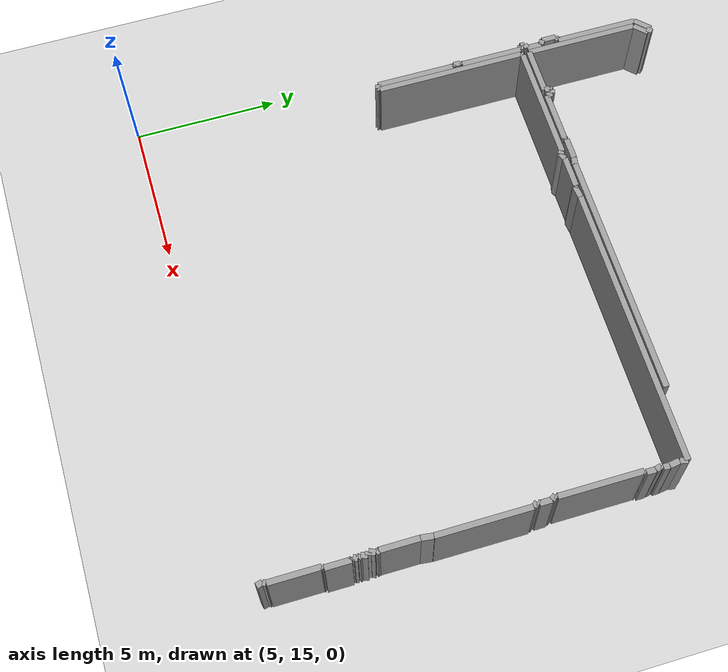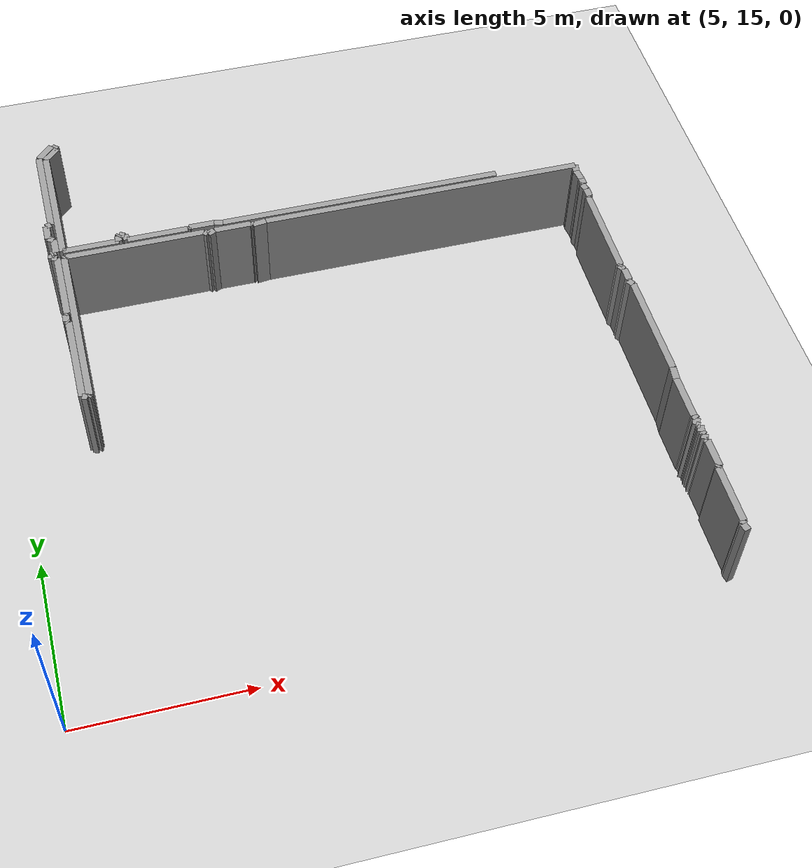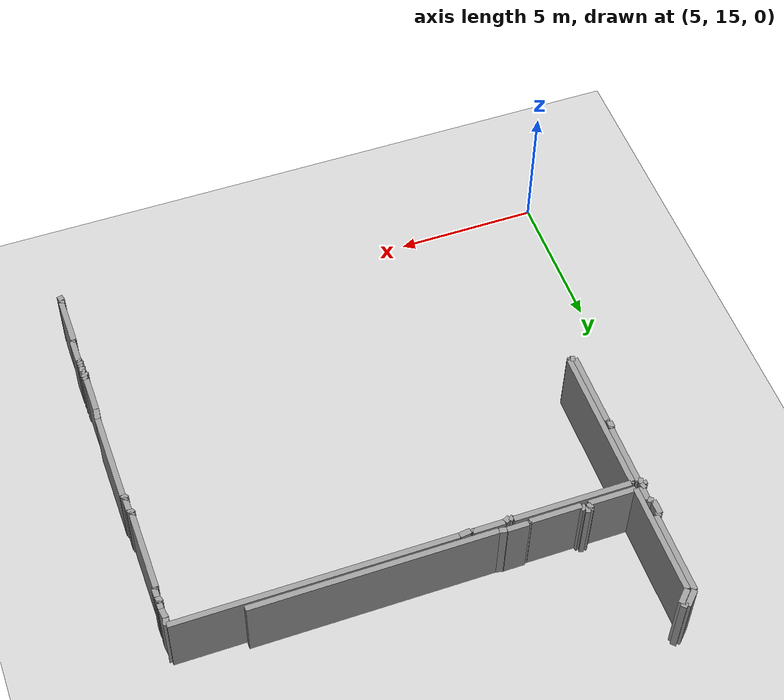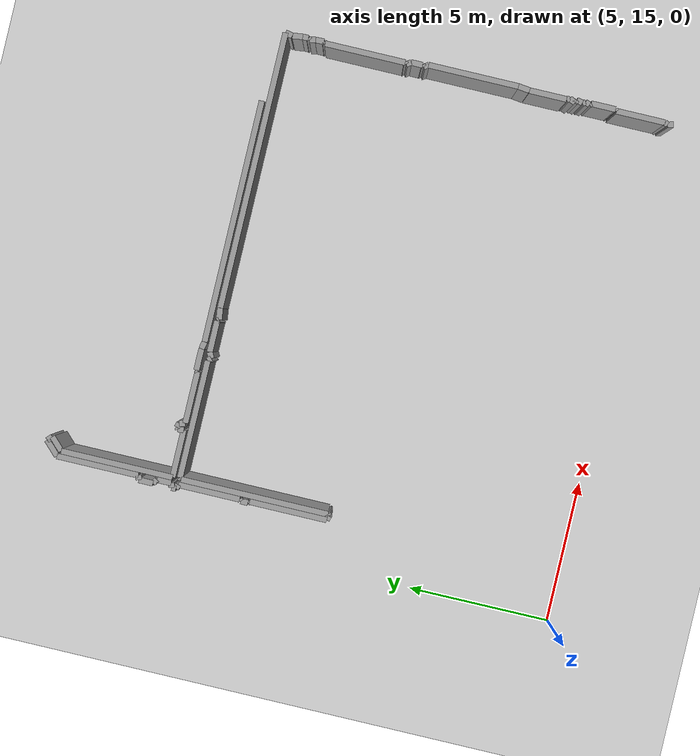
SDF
<sdf version="1.4">
 <world name="1_wall">
  <model name="ground_plane">
   <static>1</static>
   <link name="link">
    <collision name="collision">
     <geometry><plane><normal>0 0 1</normal><size>1000 1000</size></plane></geometry>
     <surface><friction><ode><mu>100</mu><mu2>50</mu2></ode></friction></surface>
    </collision>
    <visual name="visual">
     <cast_shadows>0</cast_shadows>
     <geometry><plane><normal>0 0 1</normal><size>10000 10000</size></plane></geometry>
     <material>
      <script><uri>file://media/materials/scripts/gazebo.material</uri><name>Gazebo/Grey</name></script>
     </material>
    </visual>
    <velocity_decay><linear>0</linear><angular>0</angular></velocity_decay>
   </link>
  </model>
  <model name="Wall_332">
   <static>1</static>
   <link name="Wall_332">
    <collision name="Wall_Collision_332">
     <geometry><box><size>8.450000000000001 0.2 2.5</size></box></geometry>
     <pose>0 0 1.25 0 -0 0</pose>
    </collision>
    <visual name="Wall_Visual_332">
     <pose>0 0 1.25 0 -0 0</pose>
     <geometry><box><size>8.450000000000001 0.2 2.5</size></box></geometry>
     <material>
      <script><uri>file://media/materials/scripts/gazebo.material</uri><name>Gazebo/Grey</name></script>
     </material>
    </visual>
    <velocity_decay><linear>0</linear><angular>0</angular></velocity_decay>
    <pose>16.125 28.900000000000002 0 0 0 3.141592653589793</pose>
   </link>
  </model>
  <model name="Wall_333">
   <static>1</static>
   <link name="Wall_333">
    <collision name="Wall_Collision_333">
     <geometry><box><size>0.25495097567963937 0.2 2.5</size></box></geometry>
     <pose>0 0 1.25 0 -0 0</pose>
    </collision>
    <visual name="Wall_Visual_333">
     <pose>0 0 1.25 0 -0 0</pose>
     <geometry><box><size>0.25495097567963937 0.2 2.5</size></box></geometry>
     <material>
      <script><uri>file://media/materials/scripts/gazebo.material</uri><name>Gazebo/Grey</name></script>
     </material>
    </visual>
    <velocity_decay><linear>0</linear><angular>0</angular></velocity_decay>
    <pose>11.775 28.925000000000004 0 0 0 2.9441970937399096</pose>
   </link>
  </model>
  <model name="Wall_334">
   <static>1</static>
   <link name="Wall_334">
    <collision name="Wall_Collision_334">
     <geometry><box><size>0.75 0.2 2.5</size></box></geometry>
     <pose>0 0 1.25 0 -0 0</pose>
    </collision>
    <visual name="Wall_Visual_334">
     <pose>0 0 1.25 0 -0 0</pose>
     <geometry><box><size>0.75 0.2 2.5</size></box></geometry>
     <material>
      <script><uri>file://media/materials/scripts/gazebo.material</uri><name>Gazebo/Grey</name></script>
     </material>
    </visual>
    <velocity_decay><linear>0</linear><angular>0</angular></velocity_decay>
    <pose>11.275 28.950000000000003 0 0 0 3.141592653589793</pose>
   </link>
  </model>
  <model name="Wall_335">
   <static>1</static>
   <link name="Wall_335">
    <collision name="Wall_Collision_335">
     <geometry><box><size>0.0707106781186545 0.2 2.5</size></box></geometry>
     <pose>0 0 1.25 0 -0 0</pose>
    </collision>
    <visual name="Wall_Visual_335">
     <pose>0 0 1.25 0 -0 0</pose>
     <geometry><box><size>0.0707106781186545 0.2 2.5</size></box></geometry>
     <material>
      <script><uri>file://media/materials/scripts/gazebo.material</uri><name>Gazebo/Grey</name></script>
     </material>
    </visual>
    <velocity_decay><linear>0</linear><angular>0</angular></velocity_decay>
    <pose>10.875 28.925000000000004 0 0 0 -2.356194490192327</pose>
   </link>
  </model>
  <model name="Wall_336">
   <static>1</static>
   <link name="Wall_336">
    <collision name="Wall_Collision_336">
     <geometry><box><size>1.8000000000000007 0.2 2.5</size></box></geometry>
     <pose>0 0 1.25 0 -0 0</pose>
    </collision>
    <visual name="Wall_Visual_336">
     <pose>0 0 1.25 0 -0 0</pose>
     <geometry><box><size>1.8000000000000007 0.2 2.5</size></box></geometry>
     <material>
      <script><uri>file://media/materials/scripts/gazebo.material</uri><name>Gazebo/Grey</name></script>
     </material>
    </visual>
    <velocity_decay><linear>0</linear><angular>0</angular></velocity_decay>
    <pose>9.950000000000001 28.900000000000002 0 0 0 3.141592653589793</pose>
   </link>
  </model>
  <model name="Wall_337">
   <static>1</static>
   <link name="Wall_337">
    <collision name="Wall_Collision_337">
     <geometry><box><size>0.2061552812808825 0.2 2.5</size></box></geometry>
     <pose>0 0 1.25 0 -0 0</pose>
    </collision>
    <visual name="Wall_Visual_337">
     <pose>0 0 1.25 0 -0 0</pose>
     <geometry><box><size>0.2061552812808825 0.2 2.5</size></box></geometry>
     <material>
      <script><uri>file://media/materials/scripts/gazebo.material</uri><name>Gazebo/Grey</name></script>
     </material>
    </visual>
    <velocity_decay><linear>0</linear><angular>0</angular></velocity_decay>
    <pose>9.025 29.0 0 0 0 1.815774989921765</pose>
   </link>
  </model>
  <model name="Wall_338">
   <static>1</static>
   <link name="Wall_338">
    <collision name="Wall_Collision_338">
     <geometry><box><size>0.15811388300841953 0.2 2.5</size></box></geometry>
     <pose>0 0 1.25 0 -0 0</pose>
    </collision>
    <visual name="Wall_Visual_338">
     <pose>0 0 1.25 0 -0 0</pose>
     <geometry><box><size>0.15811388300841953 0.2 2.5</size></box></geometry>
     <material>
      <script><uri>file://media/materials/scripts/gazebo.material</uri><name>Gazebo/Grey</name></script>
     </material>
    </visual>
    <velocity_decay><linear>0</linear><angular>0</angular></velocity_decay>
    <pose>8.925 29.125 0 0 0 2.8198420991931474</pose>
   </link>
  </model>
  <model name="Wall_339">
   <static>1</static>
   <link name="Wall_339">
    <collision name="Wall_Collision_339">
     <geometry><box><size>0.0707106781186545 0.2 2.5</size></box></geometry>
     <pose>0 0 1.25 0 -0 0</pose>
    </collision>
    <visual name="Wall_Visual_339">
     <pose>0 0 1.25 0 -0 0</pose>
     <geometry><box><size>0.0707106781186545 0.2 2.5</size></box></geometry>
     <material>
      <script><uri>file://media/materials/scripts/gazebo.material</uri><name>Gazebo/Grey</name></script>
     </material>
    </visual>
    <velocity_decay><linear>0</linear><angular>0</angular></velocity_decay>
    <pose>8.825 29.125 0 0 0 -2.356194490192327</pose>
   </link>
  </model>
  <model name="Wall_340">
   <static>1</static>
   <link name="Wall_340">
    <collision name="Wall_Collision_340">
     <geometry><box><size>0.1999999999999993 0.2 2.5</size></box></geometry>
     <pose>0 0 1.25 0 -0 0</pose>
    </collision>
    <visual name="Wall_Visual_340">
     <pose>0 0 1.25 0 -0 0</pose>
     <geometry><box><size>0.1999999999999993 0.2 2.5</size></box></geometry>
     <material>
      <script><uri>file://media/materials/scripts/gazebo.material</uri><name>Gazebo/Grey</name></script>
     </material>
    </visual>
    <velocity_decay><linear>0</linear><angular>0</angular></velocity_decay>
    <pose>8.8 29.0 0 0 0 -1.5707963267948966</pose>
   </link>
  </model>
  <model name="Wall_341">
   <static>1</static>
   <link name="Wall_341">
    <collision name="Wall_Collision_341">
     <geometry><box><size>1.6500000000000004 0.2 2.5</size></box></geometry>
     <pose>0 0 1.25 0 -0 0</pose>
    </collision>
    <visual name="Wall_Visual_341">
     <pose>0 0 1.25 0 -0 0</pose>
     <geometry><box><size>1.6500000000000004 0.2 2.5</size></box></geometry>
     <material>
      <script><uri>file://media/materials/scripts/gazebo.material</uri><name>Gazebo/Grey</name></script>
     </material>
    </visual>
    <velocity_decay><linear>0</linear><angular>0</angular></velocity_decay>
    <pose>7.9750000000000005 28.900000000000002 0 0 0 3.141592653589793</pose>
   </link>
  </model>
  <model name="Wall_342">
   <static>1</static>
   <link name="Wall_342">
    <collision name="Wall_Collision_342">
     <geometry><box><size>3.900000000000002 0.2 2.5</size></box></geometry>
     <pose>0 0 1.25 0 -0 0</pose>
    </collision>
    <visual name="Wall_Visual_342">
     <pose>0 0 1.25 0 -0 0</pose>
     <geometry><box><size>3.900000000000002 0.2 2.5</size></box></geometry>
     <material>
      <script><uri>file://media/materials/scripts/gazebo.material</uri><name>Gazebo/Grey</name></script>
     </material>
    </visual>
    <velocity_decay><linear>0</linear><angular>0</angular></velocity_decay>
    <pose>7.15 30.85 0 0 0 1.5707963267948966</pose>
   </link>
  </model>
  <model name="Wall_343">
   <static>1</static>
   <link name="Wall_343">
    <collision name="Wall_Collision_343">
     <geometry><box><size>0.5656854249492372 0.2 2.5</size></box></geometry>
     <pose>0 0 1.25 0 -0 0</pose>
    </collision>
    <visual name="Wall_Visual_343">
     <pose>0 0 1.25 0 -0 0</pose>
     <geometry><box><size>0.5656854249492372 0.2 2.5</size></box></geometry>
     <material>
      <script><uri>file://media/materials/scripts/gazebo.material</uri><name>Gazebo/Grey</name></script>
     </material>
    </visual>
    <velocity_decay><linear>0</linear><angular>0</angular></velocity_decay>
    <pose>7.3500000000000005 33.0 0 0 0 0.7853981633974461</pose>
   </link>
  </model>
  <model name="Wall_344">
   <static>1</static>
   <link name="Wall_344">
    <collision name="Wall_Collision_344">
     <geometry><box><size>0.2121320343559635 0.2 2.5</size></box></geometry>
     <pose>0 0 1.25 0 -0 0</pose>
    </collision>
    <visual name="Wall_Visual_344">
     <pose>0 0 1.25 0 -0 0</pose>
     <geometry><box><size>0.2121320343559635 0.2 2.5</size></box></geometry>
     <material>
      <script><uri>file://media/materials/scripts/gazebo.material</uri><name>Gazebo/Grey</name></script>
     </material>
    </visual>
    <velocity_decay><linear>0</linear><angular>0</angular></velocity_decay>
    <pose>7.4750000000000005 33.275000000000006 0 0 0 2.356194490192351</pose>
   </link>
  </model>
  <model name="Wall_345">
   <static>1</static>
   <link name="Wall_345">
    <collision name="Wall_Collision_345">
     <geometry><box><size>0.6363961030678948 0.2 2.5</size></box></geometry>
     <pose>0 0 1.25 0 -0 0</pose>
    </collision>
    <visual name="Wall_Visual_345">
     <pose>0 0 1.25 0 -0 0</pose>
     <geometry><box><size>0.6363961030678948 0.2 2.5</size></box></geometry>
     <material>
      <script><uri>file://media/materials/scripts/gazebo.material</uri><name>Gazebo/Grey</name></script>
     </material>
    </visual>
    <velocity_decay><linear>0</linear><angular>0</angular></velocity_decay>
    <pose>7.175000000000001 33.125 0 0 0 -2.356194490192342</pose>
   </link>
  </model>
  <model name="Wall_346">
   <static>1</static>
   <link name="Wall_346">
    <collision name="Wall_Collision_346">
     <geometry><box><size>2.849999999999998 0.2 2.5</size></box></geometry>
     <pose>0 0 1.25 0 -0 0</pose>
    </collision>
    <visual name="Wall_Visual_346">
     <pose>0 0 1.25 0 -0 0</pose>
     <geometry><box><size>2.849999999999998 0.2 2.5</size></box></geometry>
     <material>
      <script><uri>file://media/materials/scripts/gazebo.material</uri><name>Gazebo/Grey</name></script>
     </material>
    </visual>
    <velocity_decay><linear>0</linear><angular>0</angular></velocity_decay>
    <pose>6.95 31.475 0 0 0 -1.5707963267948966</pose>
   </link>
  </model>
  <model name="Wall_347">
   <static>1</static>
   <link name="Wall_347">
    <collision name="Wall_Collision_347">
     <geometry><box><size>0.1581138830084187 0.2 2.5</size></box></geometry>
     <pose>0 0 1.25 0 -0 0</pose>
    </collision>
    <visual name="Wall_Visual_347">
     <pose>0 0 1.25 0 -0 0</pose>
     <geometry><box><size>0.1581138830084187 0.2 2.5</size></box></geometry>
     <material>
      <script><uri>file://media/materials/scripts/gazebo.material</uri><name>Gazebo/Grey</name></script>
     </material>
    </visual>
    <velocity_decay><linear>0</linear><angular>0</angular></velocity_decay>
    <pose>6.875 30.025 0 0 0 -2.8198420991931457</pose>
   </link>
  </model>
  <model name="Wall_348">
   <static>1</static>
   <link name="Wall_348">
    <collision name="Wall_Collision_348">
     <geometry><box><size>0.5 0.2 2.5</size></box></geometry>
     <pose>0 0 1.25 0 -0 0</pose>
    </collision>
    <visual name="Wall_Visual_348">
     <pose>0 0 1.25 0 -0 0</pose>
     <geometry><box><size>0.5 0.2 2.5</size></box></geometry>
     <material>
      <script><uri>file://media/materials/scripts/gazebo.material</uri><name>Gazebo/Grey</name></script>
     </material>
    </visual>
    <velocity_decay><linear>0</linear><angular>0</angular></velocity_decay>
    <pose>6.800000000000001 29.75 0 0 0 -1.5707963267948966</pose>
   </link>
  </model>
  <model name="Wall_349">
   <static>1</static>
   <link name="Wall_349">
    <collision name="Wall_Collision_349">
     <geometry><box><size>0.18027756377319784 0.2 2.5</size></box></geometry>
     <pose>0 0 1.25 0 -0 0</pose>
    </collision>
    <visual name="Wall_Visual_349">
     <pose>0 0 1.25 0 -0 0</pose>
     <geometry><box><size>0.18027756377319784 0.2 2.5</size></box></geometry>
     <material>
      <script><uri>file://media/materials/scripts/gazebo.material</uri><name>Gazebo/Grey</name></script>
     </material>
    </visual>
    <velocity_decay><linear>0</linear><angular>0</angular></velocity_decay>
    <pose>6.875 29.450000000000003 0 0 0 -0.5880026035475594</pose>
   </link>
  </model>
  <model name="Wall_350">
   <static>1</static>
   <link name="Wall_350">
    <collision name="Wall_Collision_350">
     <geometry><box><size>0.5 0.2 2.5</size></box></geometry>
     <pose>0 0 1.25 0 -0 0</pose>
    </collision>
    <visual name="Wall_Visual_350">
     <pose>0 0 1.25 0 -0 0</pose>
     <geometry><box><size>0.5 0.2 2.5</size></box></geometry>
     <material>
      <script><uri>file://media/materials/scripts/gazebo.material</uri><name>Gazebo/Grey</name></script>
     </material>
    </visual>
    <velocity_decay><linear>0</linear><angular>0</angular></velocity_decay>
    <pose>6.95 29.150000000000002 0 0 0 -1.5707963267948966</pose>
   </link>
  </model>
  <model name="Wall_351">
   <static>1</static>
   <link name="Wall_351">
    <collision name="Wall_Collision_351">
     <geometry><box><size>0.1581138830084187 0.2 2.5</size></box></geometry>
     <pose>0 0 1.25 0 -0 0</pose>
    </collision>
    <visual name="Wall_Visual_351">
     <pose>0 0 1.25 0 -0 0</pose>
     <geometry><box><size>0.1581138830084187 0.2 2.5</size></box></geometry>
     <material>
      <script><uri>file://media/materials/scripts/gazebo.material</uri><name>Gazebo/Grey</name></script>
     </material>
    </visual>
    <velocity_decay><linear>0</linear><angular>0</angular></velocity_decay>
    <pose>6.875 28.875 0 0 0 -2.8198420991931457</pose>
   </link>
  </model>
  <model name="Wall_352">
   <static>1</static>
   <link name="Wall_352">
    <collision name="Wall_Collision_352">
     <geometry><box><size>0.14999999999999858 0.2 2.5</size></box></geometry>
     <pose>0 0 1.25 0 -0 0</pose>
    </collision>
    <visual name="Wall_Visual_352">
     <pose>0 0 1.25 0 -0 0</pose>
     <geometry><box><size>0.14999999999999858 0.2 2.5</size></box></geometry>
     <material>
      <script><uri>file://media/materials/scripts/gazebo.material</uri><name>Gazebo/Grey</name></script>
     </material>
    </visual>
    <velocity_decay><linear>0</linear><angular>0</angular></velocity_decay>
    <pose>6.800000000000001 28.775000000000002 0 0 0 -1.5707963267948966</pose>
   </link>
  </model>
  <model name="Wall_353">
   <static>1</static>
   <link name="Wall_353">
    <collision name="Wall_Collision_353">
     <geometry><box><size>0.1581138830084187 0.2 2.5</size></box></geometry>
     <pose>0 0 1.25 0 -0 0</pose>
    </collision>
    <visual name="Wall_Visual_353">
     <pose>0 0 1.25 0 -0 0</pose>
     <geometry><box><size>0.1581138830084187 0.2 2.5</size></box></geometry>
     <material>
      <script><uri>file://media/materials/scripts/gazebo.material</uri><name>Gazebo/Grey</name></script>
     </material>
    </visual>
    <velocity_decay><linear>0</linear><angular>0</angular></velocity_decay>
    <pose>6.875 28.675000000000004 0 0 0 -0.3217505543966475</pose>
   </link>
  </model>
  <model name="Wall_354">
   <static>1</static>
   <link name="Wall_354">
    <collision name="Wall_Collision_354">
     <geometry><box><size>2.150000000000002 0.2 2.5</size></box></geometry>
     <pose>0 0 1.25 0 -0 0</pose>
    </collision>
    <visual name="Wall_Visual_354">
     <pose>0 0 1.25 0 -0 0</pose>
     <geometry><box><size>2.150000000000002 0.2 2.5</size></box></geometry>
     <material>
      <script><uri>file://media/materials/scripts/gazebo.material</uri><name>Gazebo/Grey</name></script>
     </material>
    </visual>
    <velocity_decay><linear>0</linear><angular>0</angular></velocity_decay>
    <pose>6.95 27.575000000000003 0 0 0 -1.5707963267948966</pose>
   </link>
  </model>
  <model name="Wall_355">
   <static>1</static>
   <link name="Wall_355">
    <collision name="Wall_Collision_355">
     <geometry><box><size>0.07071067811865261 0.2 2.5</size></box></geometry>
     <pose>0 0 1.25 0 -0 0</pose>
    </collision>
    <visual name="Wall_Visual_355">
     <pose>0 0 1.25 0 -0 0</pose>
     <geometry><box><size>0.07071067811865261 0.2 2.5</size></box></geometry>
     <material>
      <script><uri>file://media/materials/scripts/gazebo.material</uri><name>Gazebo/Grey</name></script>
     </material>
    </visual>
    <velocity_decay><linear>0</linear><angular>0</angular></velocity_decay>
    <pose>6.925000000000001 26.475 0 0 0 -2.3561944901923715</pose>
   </link>
  </model>
  <model name="Wall_356">
   <static>1</static>
   <link name="Wall_356">
    <collision name="Wall_Collision_356">
     <geometry><box><size>0.25 0.2 2.5</size></box></geometry>
     <pose>0 0 1.25 0 -0 0</pose>
    </collision>
    <visual name="Wall_Visual_356">
     <pose>0 0 1.25 0 -0 0</pose>
     <geometry><box><size>0.25 0.2 2.5</size></box></geometry>
     <material>
      <script><uri>file://media/materials/scripts/gazebo.material</uri><name>Gazebo/Grey</name></script>
     </material>
    </visual>
    <velocity_decay><linear>0</linear><angular>0</angular></velocity_decay>
    <pose>6.9 26.325000000000003 0 0 0 -1.5707963267948966</pose>
   </link>
  </model>
  <model name="Wall_357">
   <static>1</static>
   <link name="Wall_357">
    <collision name="Wall_Collision_357">
     <geometry><box><size>0.07071067811865513 0.2 2.5</size></box></geometry>
     <pose>0 0 1.25 0 -0 0</pose>
    </collision>
    <visual name="Wall_Visual_357">
     <pose>0 0 1.25 0 -0 0</pose>
     <geometry><box><size>0.07071067811865513 0.2 2.5</size></box></geometry>
     <material>
      <script><uri>file://media/materials/scripts/gazebo.material</uri><name>Gazebo/Grey</name></script>
     </material>
    </visual>
    <velocity_decay><linear>0</linear><angular>0</angular></velocity_decay>
    <pose>6.925000000000001 26.175000000000004 0 0 0 -0.7853981633974572</pose>
   </link>
  </model>
  <model name="Wall_358">
   <static>1</static>
   <link name="Wall_358">
    <collision name="Wall_Collision_358">
     <geometry><box><size>2.6999999999999993 0.2 2.5</size></box></geometry>
     <pose>0 0 1.25 0 -0 0</pose>
    </collision>
    <visual name="Wall_Visual_358">
     <pose>0 0 1.25 0 -0 0</pose>
     <geometry><box><size>2.6999999999999993 0.2 2.5</size></box></geometry>
     <material>
      <script><uri>file://media/materials/scripts/gazebo.material</uri><name>Gazebo/Grey</name></script>
     </material>
    </visual>
    <velocity_decay><linear>0</linear><angular>0</angular></velocity_decay>
    <pose>6.95 24.800000000000004 0 0 0 -1.5707963267948966</pose>
   </link>
  </model>
  <model name="Wall_359">
   <static>1</static>
   <link name="Wall_359">
    <collision name="Wall_Collision_359">
     <geometry><box><size>0.15811388300841953 0.2 2.5</size></box></geometry>
     <pose>0 0 1.25 0 -0 0</pose>
    </collision>
    <visual name="Wall_Visual_359">
     <pose>0 0 1.25 0 -0 0</pose>
     <geometry><box><size>0.15811388300841953 0.2 2.5</size></box></geometry>
     <material>
      <script><uri>file://media/materials/scripts/gazebo.material</uri><name>Gazebo/Grey</name></script>
     </material>
    </visual>
    <velocity_decay><linear>0</linear><angular>0</angular></velocity_decay>
    <pose>7.025 23.425000000000004 0 0 0 -0.32175055439664574</pose>
   </link>
  </model>
  <model name="Wall_360">
   <static>1</static>
   <link name="Wall_360">
    <collision name="Wall_Collision_360">
     <geometry><box><size>0.07071067811865513 0.2 2.5</size></box></geometry>
     <pose>0 0 1.25 0 -0 0</pose>
    </collision>
    <visual name="Wall_Visual_360">
     <pose>0 0 1.25 0 -0 0</pose>
     <geometry><box><size>0.07071067811865513 0.2 2.5</size></box></geometry>
     <material>
      <script><uri>file://media/materials/scripts/gazebo.material</uri><name>Gazebo/Grey</name></script>
     </material>
    </visual>
    <velocity_decay><linear>0</linear><angular>0</angular></velocity_decay>
    <pose>7.125 23.425000000000004 0 0 0 0.7853981633974572</pose>
   </link>
  </model>
  <model name="Wall_361">
   <static>1</static>
   <link name="Wall_361">
    <collision name="Wall_Collision_361">
     <geometry><box><size>5.149999999999999 0.2 2.5</size></box></geometry>
     <pose>0 0 1.25 0 -0 0</pose>
    </collision>
    <visual name="Wall_Visual_361">
     <pose>0 0 1.25 0 -0 0</pose>
     <geometry><box><size>5.149999999999999 0.2 2.5</size></box></geometry>
     <material>
      <script><uri>file://media/materials/scripts/gazebo.material</uri><name>Gazebo/Grey</name></script>
     </material>
    </visual>
    <velocity_decay><linear>0</linear><angular>0</angular></velocity_decay>
    <pose>7.15 26.025000000000002 0 0 0 1.5707963267948966</pose>
   </link>
  </model>
  <model name="Wall_362">
   <static>1</static>
   <link name="Wall_362">
    <collision name="Wall_Collision_362">
     <geometry><box><size>0.07071067811865513 0.2 2.5</size></box></geometry>
     <pose>0 0 1.25 0 -0 0</pose>
    </collision>
    <visual name="Wall_Visual_362">
     <pose>0 0 1.25 0 -0 0</pose>
     <geometry><box><size>0.07071067811865513 0.2 2.5</size></box></geometry>
     <material>
      <script><uri>file://media/materials/scripts/gazebo.material</uri><name>Gazebo/Grey</name></script>
     </material>
    </visual>
    <velocity_decay><linear>0</linear><angular>0</angular></velocity_decay>
    <pose>7.175000000000001 28.625 0 0 0 0.7853981633974572</pose>
   </link>
  </model>
  <model name="Wall_363">
   <static>1</static>
   <link name="Wall_363">
    <collision name="Wall_Collision_363">
     <geometry><box><size>4.1000000000000005 0.2 2.5</size></box></geometry>
     <pose>0 0 1.25 0 -0 0</pose>
    </collision>
    <visual name="Wall_Visual_363">
     <pose>0 0 1.25 0 -0 0</pose>
     <geometry><box><size>4.1000000000000005 0.2 2.5</size></box></geometry>
     <material>
      <script><uri>file://media/materials/scripts/gazebo.material</uri><name>Gazebo/Grey</name></script>
     </material>
    </visual>
    <velocity_decay><linear>0</linear><angular>0</angular></velocity_decay>
    <pose>9.25 28.650000000000002 0 0 0 0.0</pose>
   </link>
  </model>
  <model name="Wall_364">
   <static>1</static>
   <link name="Wall_364">
    <collision name="Wall_Collision_364">
     <geometry><box><size>0.14142135623731025 0.2 2.5</size></box></geometry>
     <pose>0 0 1.25 0 -0 0</pose>
    </collision>
    <visual name="Wall_Visual_364">
     <pose>0 0 1.25 0 -0 0</pose>
     <geometry><box><size>0.14142135623731025 0.2 2.5</size></box></geometry>
     <material>
      <script><uri>file://media/materials/scripts/gazebo.material</uri><name>Gazebo/Grey</name></script>
     </material>
    </visual>
    <velocity_decay><linear>0</linear><angular>0</angular></velocity_decay>
    <pose>11.350000000000001 28.6 0 0 0 -0.7853981633974572</pose>
   </link>
  </model>
  <model name="Wall_365">
   <static>1</static>
   <link name="Wall_365">
    <collision name="Wall_Collision_365">
     <geometry><box><size>0.22360679774998055 0.2 2.5</size></box></geometry>
     <pose>0 0 1.25 0 -0 0</pose>
    </collision>
    <visual name="Wall_Visual_365">
     <pose>0 0 1.25 0 -0 0</pose>
     <geometry><box><size>0.22360679774998055 0.2 2.5</size></box></geometry>
     <material>
      <script><uri>file://media/materials/scripts/gazebo.material</uri><name>Gazebo/Grey</name></script>
     </material>
    </visual>
    <velocity_decay><linear>0</linear><angular>0</angular></velocity_decay>
    <pose>11.5 28.6 0 0 0 0.46364760900080965</pose>
   </link>
  </model>
  <model name="Wall_366">
   <static>1</static>
   <link name="Wall_366">
    <collision name="Wall_Collision_366">
     <geometry><box><size>1.0999999999999996 0.2 2.5</size></box></geometry>
     <pose>0 0 1.25 0 -0 0</pose>
    </collision>
    <visual name="Wall_Visual_366">
     <pose>0 0 1.25 0 -0 0</pose>
     <geometry><box><size>1.0999999999999996 0.2 2.5</size></box></geometry>
     <material>
      <script><uri>file://media/materials/scripts/gazebo.material</uri><name>Gazebo/Grey</name></script>
     </material>
    </visual>
    <velocity_decay><linear>0</linear><angular>0</angular></velocity_decay>
    <pose>12.150000000000002 28.650000000000002 0 0 0 0.0</pose>
   </link>
  </model>
  <model name="Wall_367">
   <static>1</static>
   <link name="Wall_367">
    <collision name="Wall_Collision_367">
     <geometry><box><size>0.0707106781186545 0.2 2.5</size></box></geometry>
     <pose>0 0 1.25 0 -0 0</pose>
    </collision>
    <visual name="Wall_Visual_367">
     <pose>0 0 1.25 0 -0 0</pose>
     <geometry><box><size>0.0707106781186545 0.2 2.5</size></box></geometry>
     <material>
      <script><uri>file://media/materials/scripts/gazebo.material</uri><name>Gazebo/Grey</name></script>
     </material>
    </visual>
    <velocity_decay><linear>0</linear><angular>0</angular></velocity_decay>
    <pose>12.725000000000001 28.625 0 0 0 -0.785398163397466</pose>
   </link>
  </model>
  <model name="Wall_368">
   <static>1</static>
   <link name="Wall_368">
    <collision name="Wall_Collision_368">
     <geometry><box><size>0.4031128874149279 0.2 2.5</size></box></geometry>
     <pose>0 0 1.25 0 -0 0</pose>
    </collision>
    <visual name="Wall_Visual_368">
     <pose>0 0 1.25 0 -0 0</pose>
     <geometry><box><size>0.4031128874149279 0.2 2.5</size></box></geometry>
     <material>
      <script><uri>file://media/materials/scripts/gazebo.material</uri><name>Gazebo/Grey</name></script>
     </material>
    </visual>
    <velocity_decay><linear>0</linear><angular>0</angular></velocity_decay>
    <pose>12.95 28.625 0 0 0 0.12435499454676308</pose>
   </link>
  </model>
  <model name="Wall_369">
   <static>1</static>
   <link name="Wall_369">
    <collision name="Wall_Collision_369">
     <geometry><box><size>9.65 0.2 2.5</size></box></geometry>
     <pose>0 0 1.25 0 -0 0</pose>
    </collision>
    <visual name="Wall_Visual_369">
     <pose>0 0 1.25 0 -0 0</pose>
     <geometry><box><size>9.65 0.2 2.5</size></box></geometry>
     <material>
      <script><uri>file://media/materials/scripts/gazebo.material</uri><name>Gazebo/Grey</name></script>
     </material>
    </visual>
    <velocity_decay><linear>0</linear><angular>0</angular></velocity_decay>
    <pose>17.975 28.650000000000002 0 0 0 0.0</pose>
   </link>
  </model>
  <model name="Wall_370">
   <static>1</static>
   <link name="Wall_370">
    <collision name="Wall_Collision_370">
     <geometry><box><size>0.25495097567963937 0.2 2.5</size></box></geometry>
     <pose>0 0 1.25 0 -0 0</pose>
    </collision>
    <visual name="Wall_Visual_370">
     <pose>0 0 1.25 0 -0 0</pose>
     <geometry><box><size>0.25495097567963937 0.2 2.5</size></box></geometry>
     <material>
      <script><uri>file://media/materials/scripts/gazebo.material</uri><name>Gazebo/Grey</name></script>
     </material>
    </visual>
    <velocity_decay><linear>0</linear><angular>0</angular></velocity_decay>
    <pose>22.775 28.525000000000002 0 0 0 -1.76819188664478</pose>
   </link>
  </model>
  <model name="Wall_371">
   <static>1</static>
   <link name="Wall_371">
    <collision name="Wall_Collision_371">
     <geometry><box><size>0.35355339059327523 0.2 2.5</size></box></geometry>
     <pose>0 0 1.25 0 -0 0</pose>
    </collision>
    <visual name="Wall_Visual_371">
     <pose>0 0 1.25 0 -0 0</pose>
     <geometry><box><size>0.35355339059327523 0.2 2.5</size></box></geometry>
     <material>
      <script><uri>file://media/materials/scripts/gazebo.material</uri><name>Gazebo/Grey</name></script>
     </material>
    </visual>
    <velocity_decay><linear>0</linear><angular>0</angular></velocity_decay>
    <pose>22.775 28.225 0 0 0 -1.4288992721907312</pose>
   </link>
  </model>
  <model name="Wall_372">
   <static>1</static>
   <link name="Wall_372">
    <collision name="Wall_Collision_372">
     <geometry><box><size>0.1999999999999993 0.2 2.5</size></box></geometry>
     <pose>0 0 1.25 0 -0 0</pose>
    </collision>
    <visual name="Wall_Visual_372">
     <pose>0 0 1.25 0 -0 0</pose>
     <geometry><box><size>0.1999999999999993 0.2 2.5</size></box></geometry>
     <material>
      <script><uri>file://media/materials/scripts/gazebo.material</uri><name>Gazebo/Grey</name></script>
     </material>
    </visual>
    <velocity_decay><linear>0</linear><angular>0</angular></velocity_decay>
    <pose>22.8 27.950000000000003 0 0 0 -1.5707963267948966</pose>
   </link>
  </model>
  <model name="Wall_373">
   <static>1</static>
   <link name="Wall_373">
    <collision name="Wall_Collision_373">
     <geometry><box><size>0.07071067811865576 0.2 2.5</size></box></geometry>
     <pose>0 0 1.25 0 -0 0</pose>
    </collision>
    <visual name="Wall_Visual_373">
     <pose>0 0 1.25 0 -0 0</pose>
     <geometry><box><size>0.07071067811865576 0.2 2.5</size></box></geometry>
     <material>
      <script><uri>file://media/materials/scripts/gazebo.material</uri><name>Gazebo/Grey</name></script>
     </material>
    </visual>
    <velocity_decay><linear>0</linear><angular>0</angular></velocity_decay>
    <pose>22.775 27.825000000000003 0 0 0 -2.356194490192345</pose>
   </link>
  </model>
  <model name="Wall_374">
   <static>1</static>
   <link name="Wall_374">
    <collision name="Wall_Collision_374">
     <geometry><box><size>0.2061552812808825 0.2 2.5</size></box></geometry>
     <pose>0 0 1.25 0 -0 0</pose>
    </collision>
    <visual name="Wall_Visual_374">
     <pose>0 0 1.25 0 -0 0</pose>
     <geometry><box><size>0.2061552812808825 0.2 2.5</size></box></geometry>
     <material>
      <script><uri>file://media/materials/scripts/gazebo.material</uri><name>Gazebo/Grey</name></script>
     </material>
    </visual>
    <velocity_decay><linear>0</linear><angular>0</angular></velocity_decay>
    <pose>22.775 27.700000000000003 0 0 0 -1.3258176636680283</pose>
   </link>
  </model>
  <model name="Wall_375">
   <static>1</static>
   <link name="Wall_375">
    <collision name="Wall_Collision_375">
     <geometry><box><size>0.3000000000000007 0.2 2.5</size></box></geometry>
     <pose>0 0 1.25 0 -0 0</pose>
    </collision>
    <visual name="Wall_Visual_375">
     <pose>0 0 1.25 0 -0 0</pose>
     <geometry><box><size>0.3000000000000007 0.2 2.5</size></box></geometry>
     <material>
      <script><uri>file://media/materials/scripts/gazebo.material</uri><name>Gazebo/Grey</name></script>
     </material>
    </visual>
    <velocity_decay><linear>0</linear><angular>0</angular></velocity_decay>
    <pose>22.8 27.450000000000003 0 0 0 -1.5707963267948966</pose>
   </link>
  </model>
  <model name="Wall_376">
   <static>1</static>
   <link name="Wall_376">
    <collision name="Wall_Collision_376">
     <geometry><box><size>0.07071067811865576 0.2 2.5</size></box></geometry>
     <pose>0 0 1.25 0 -0 0</pose>
    </collision>
    <visual name="Wall_Visual_376">
     <pose>0 0 1.25 0 -0 0</pose>
     <geometry><box><size>0.07071067811865576 0.2 2.5</size></box></geometry>
     <material>
      <script><uri>file://media/materials/scripts/gazebo.material</uri><name>Gazebo/Grey</name></script>
     </material>
    </visual>
    <velocity_decay><linear>0</linear><angular>0</angular></velocity_decay>
    <pose>22.775 27.275 0 0 0 -2.356194490192345</pose>
   </link>
  </model>
  <model name="Wall_377">
   <static>1</static>
   <link name="Wall_377">
    <collision name="Wall_Collision_377">
     <geometry><box><size>2.799999999999997 0.2 2.5</size></box></geometry>
     <pose>0 0 1.25 0 -0 0</pose>
    </collision>
    <visual name="Wall_Visual_377">
     <pose>0 0 1.25 0 -0 0</pose>
     <geometry><box><size>2.799999999999997 0.2 2.5</size></box></geometry>
     <material>
      <script><uri>file://media/materials/scripts/gazebo.material</uri><name>Gazebo/Grey</name></script>
     </material>
    </visual>
    <velocity_decay><linear>0</linear><angular>0</angular></velocity_decay>
    <pose>22.75 25.85 0 0 0 -1.5707963267948966</pose>
   </link>
  </model>
  <model name="Wall_378">
   <static>1</static>
   <link name="Wall_378">
    <collision name="Wall_Collision_378">
     <geometry><box><size>0.07071067811865325 0.2 2.5</size></box></geometry>
     <pose>0 0 1.25 0 -0 0</pose>
    </collision>
    <visual name="Wall_Visual_378">
     <pose>0 0 1.25 0 -0 0</pose>
     <geometry><box><size>0.07071067811865325 0.2 2.5</size></box></geometry>
     <material>
      <script><uri>file://media/materials/scripts/gazebo.material</uri><name>Gazebo/Grey</name></script>
     </material>
    </visual>
    <velocity_decay><linear>0</linear><angular>0</angular></velocity_decay>
    <pose>22.725 24.425000000000004 0 0 0 -2.3561944901923093</pose>
   </link>
  </model>
  <model name="Wall_379">
   <static>1</static>
   <link name="Wall_379">
    <collision name="Wall_Collision_379">
     <geometry><box><size>0.18027756377320006 0.2 2.5</size></box></geometry>
     <pose>0 0 1.25 0 -0 0</pose>
    </collision>
    <visual name="Wall_Visual_379">
     <pose>0 0 1.25 0 -0 0</pose>
     <geometry><box><size>0.18027756377320006 0.2 2.5</size></box></geometry>
     <material>
      <script><uri>file://media/materials/scripts/gazebo.material</uri><name>Gazebo/Grey</name></script>
     </material>
    </visual>
    <velocity_decay><linear>0</linear><angular>0</angular></velocity_decay>
    <pose>22.75 24.325000000000003 0 0 0 -0.9827937232473455</pose>
   </link>
  </model>
  <model name="Wall_380">
   <static>1</static>
   <link name="Wall_380">
    <collision name="Wall_Collision_380">
     <geometry><box><size>0.3999999999999986 0.2 2.5</size></box></geometry>
     <pose>0 0 1.25 0 -0 0</pose>
    </collision>
    <visual name="Wall_Visual_380">
     <pose>0 0 1.25 0 -0 0</pose>
     <geometry><box><size>0.3999999999999986 0.2 2.5</size></box></geometry>
     <material>
      <script><uri>file://media/materials/scripts/gazebo.material</uri><name>Gazebo/Grey</name></script>
     </material>
    </visual>
    <velocity_decay><linear>0</linear><angular>0</angular></velocity_decay>
    <pose>22.8 24.05 0 0 0 -1.5707963267948966</pose>
   </link>
  </model>
  <model name="Wall_381">
   <static>1</static>
   <link name="Wall_381">
    <collision name="Wall_Collision_381">
     <geometry><box><size>0.07071067811865576 0.2 2.5</size></box></geometry>
     <pose>0 0 1.25 0 -0 0</pose>
    </collision>
    <visual name="Wall_Visual_381">
     <pose>0 0 1.25 0 -0 0</pose>
     <geometry><box><size>0.07071067811865576 0.2 2.5</size></box></geometry>
     <material>
      <script><uri>file://media/materials/scripts/gazebo.material</uri><name>Gazebo/Grey</name></script>
     </material>
    </visual>
    <velocity_decay><linear>0</linear><angular>0</angular></velocity_decay>
    <pose>22.775 23.825000000000003 0 0 0 -2.356194490192345</pose>
   </link>
  </model>
  <model name="Wall_382">
   <static>1</static>
   <link name="Wall_382">
    <collision name="Wall_Collision_382">
     <geometry><box><size>0.18027756377319906 0.2 2.5</size></box></geometry>
     <pose>0 0 1.25 0 -0 0</pose>
    </collision>
    <visual name="Wall_Visual_382">
     <pose>0 0 1.25 0 -0 0</pose>
     <geometry><box><size>0.18027756377319906 0.2 2.5</size></box></geometry>
     <material>
      <script><uri>file://media/materials/scripts/gazebo.material</uri><name>Gazebo/Grey</name></script>
     </material>
    </visual>
    <velocity_decay><linear>0</linear><angular>0</angular></velocity_decay>
    <pose>22.8 23.725 0 0 0 -0.9827937232473182</pose>
   </link>
  </model>
  <model name="Wall_383">
   <static>1</static>
   <link name="Wall_383">
    <collision name="Wall_Collision_383">
     <geometry><box><size>3.150000000000002 0.2 2.5</size></box></geometry>
     <pose>0 0 1.25 0 -0 0</pose>
    </collision>
    <visual name="Wall_Visual_383">
     <pose>0 0 1.25 0 -0 0</pose>
     <geometry><box><size>3.150000000000002 0.2 2.5</size></box></geometry>
     <material>
      <script><uri>file://media/materials/scripts/gazebo.material</uri><name>Gazebo/Grey</name></script>
     </material>
    </visual>
    <velocity_decay><linear>0</linear><angular>0</angular></velocity_decay>
    <pose>22.85 22.075000000000003 0 0 0 -1.5707963267948966</pose>
   </link>
  </model>
  <model name="Wall_384">
   <static>1</static>
   <link name="Wall_384">
    <collision name="Wall_Collision_384">
     <geometry><box><size>0.4031128874149261 0.2 2.5</size></box></geometry>
     <pose>0 0 1.25 0 -0 0</pose>
    </collision>
    <visual name="Wall_Visual_384">
     <pose>0 0 1.25 0 -0 0</pose>
     <geometry><box><size>0.4031128874149261 0.2 2.5</size></box></geometry>
     <material>
      <script><uri>file://media/materials/scripts/gazebo.material</uri><name>Gazebo/Grey</name></script>
     </material>
    </visual>
    <velocity_decay><linear>0</linear><angular>0</angular></velocity_decay>
    <pose>22.825000000000003 20.3 0 0 0 -1.6951513213416602</pose>
   </link>
  </model>
  <model name="Wall_385">
   <static>1</static>
   <link name="Wall_385">
    <collision name="Wall_Collision_385">
     <geometry><box><size>1.3000000000000007 0.2 2.5</size></box></geometry>
     <pose>0 0 1.25 0 -0 0</pose>
    </collision>
    <visual name="Wall_Visual_385">
     <pose>0 0 1.25 0 -0 0</pose>
     <geometry><box><size>1.3000000000000007 0.2 2.5</size></box></geometry>
     <material>
      <script><uri>file://media/materials/scripts/gazebo.material</uri><name>Gazebo/Grey</name></script>
     </material>
    </visual>
    <velocity_decay><linear>0</linear><angular>0</angular></velocity_decay>
    <pose>22.8 19.450000000000003 0 0 0 -1.5707963267948966</pose>
   </link>
  </model>
  <model name="Wall_386">
   <static>1</static>
   <link name="Wall_386">
    <collision name="Wall_Collision_386">
     <geometry><box><size>0.11180339887499108 0.2 2.5</size></box></geometry>
     <pose>0 0 1.25 0 -0 0</pose>
    </collision>
    <visual name="Wall_Visual_386">
     <pose>0 0 1.25 0 -0 0</pose>
     <geometry><box><size>0.11180339887499108 0.2 2.5</size></box></geometry>
     <material>
      <script><uri>file://media/materials/scripts/gazebo.material</uri><name>Gazebo/Grey</name></script>
     </material>
    </visual>
    <velocity_decay><linear>0</linear><angular>0</angular></velocity_decay>
    <pose>22.825000000000003 18.75 0 0 0 -1.1071487177940904</pose>
   </link>
  </model>
  <model name="Wall_387">
   <static>1</static>
   <link name="Wall_387">
    <collision name="Wall_Collision_387">
     <geometry><box><size>0.22360679774997896 0.2 2.5</size></box></geometry>
     <pose>0 0 1.25 0 -0 0</pose>
    </collision>
    <visual name="Wall_Visual_387">
     <pose>0 0 1.25 0 -0 0</pose>
     <geometry><box><size>0.22360679774997896 0.2 2.5</size></box></geometry>
     <material>
      <script><uri>file://media/materials/scripts/gazebo.material</uri><name>Gazebo/Grey</name></script>
     </material>
    </visual>
    <velocity_decay><linear>0</linear><angular>0</angular></velocity_decay>
    <pose>22.8 18.6 0 0 0 -2.03444393579571</pose>
   </link>
  </model>
  <model name="Wall_388">
   <static>1</static>
   <link name="Wall_388">
    <collision name="Wall_Collision_388">
     <geometry><box><size>0.11180339887499108 0.2 2.5</size></box></geometry>
     <pose>0 0 1.25 0 -0 0</pose>
    </collision>
    <visual name="Wall_Visual_388">
     <pose>0 0 1.25 0 -0 0</pose>
     <geometry><box><size>0.11180339887499108 0.2 2.5</size></box></geometry>
     <material>
      <script><uri>file://media/materials/scripts/gazebo.material</uri><name>Gazebo/Grey</name></script>
     </material>
    </visual>
    <velocity_decay><linear>0</linear><angular>0</angular></velocity_decay>
    <pose>22.8 18.475 0 0 0 -0.4636476090008061</pose>
   </link>
  </model>
  <model name="Wall_389">
   <static>1</static>
   <link name="Wall_389">
    <collision name="Wall_Collision_389">
     <geometry><box><size>0.2061552812808825 0.2 2.5</size></box></geometry>
     <pose>0 0 1.25 0 -0 0</pose>
    </collision>
    <visual name="Wall_Visual_389">
     <pose>0 0 1.25 0 -0 0</pose>
     <geometry><box><size>0.2061552812808825 0.2 2.5</size></box></geometry>
     <material>
      <script><uri>file://media/materials/scripts/gazebo.material</uri><name>Gazebo/Grey</name></script>
     </material>
    </visual>
    <velocity_decay><linear>0</linear><angular>0</angular></velocity_decay>
    <pose>22.825000000000003 18.35 0 0 0 -1.815774989921765</pose>
   </link>
  </model>
  <model name="Wall_390">
   <static>1</static>
   <link name="Wall_390">
    <collision name="Wall_Collision_390">
     <geometry><box><size>0.1118033988749879 0.2 2.5</size></box></geometry>
     <pose>0 0 1.25 0 -0 0</pose>
    </collision>
    <visual name="Wall_Visual_390">
     <pose>0 0 1.25 0 -0 0</pose>
     <geometry><box><size>0.1118033988749879 0.2 2.5</size></box></geometry>
     <material>
      <script><uri>file://media/materials/scripts/gazebo.material</uri><name>Gazebo/Grey</name></script>
     </material>
    </visual>
    <velocity_decay><linear>0</linear><angular>0</angular></velocity_decay>
    <pose>22.825000000000003 18.200000000000003 0 0 0 -1.1071487177940762</pose>
   </link>
  </model>
  <model name="Wall_391">
   <static>1</static>
   <link name="Wall_391">
    <collision name="Wall_Collision_391">
     <geometry><box><size>0.15811388300842122 0.2 2.5</size></box></geometry>
     <pose>0 0 1.25 0 -0 0</pose>
    </collision>
    <visual name="Wall_Visual_391">
     <pose>0 0 1.25 0 -0 0</pose>
     <geometry><box><size>0.15811388300842122 0.2 2.5</size></box></geometry>
     <material>
      <script><uri>file://media/materials/scripts/gazebo.material</uri><name>Gazebo/Grey</name></script>
     </material>
    </visual>
    <velocity_decay><linear>0</linear><angular>0</angular></velocity_decay>
    <pose>22.825000000000003 18.075000000000003 0 0 0 -1.892546881191539</pose>
   </link>
  </model>
  <model name="Wall_392">
   <static>1</static>
   <link name="Wall_392">
    <collision name="Wall_Collision_392">
     <geometry><box><size>0.07071067811865576 0.2 2.5</size></box></geometry>
     <pose>0 0 1.25 0 -0 0</pose>
    </collision>
    <visual name="Wall_Visual_392">
     <pose>0 0 1.25 0 -0 0</pose>
     <geometry><box><size>0.07071067811865576 0.2 2.5</size></box></geometry>
     <material>
      <script><uri>file://media/materials/scripts/gazebo.material</uri><name>Gazebo/Grey</name></script>
     </material>
    </visual>
    <velocity_decay><linear>0</linear><angular>0</angular></velocity_decay>
    <pose>22.825000000000003 17.975 0 0 0 -0.7853981633974483</pose>
   </link>
  </model>
  <model name="Wall_393">
   <static>1</static>
   <link name="Wall_393">
    <collision name="Wall_Collision_393">
     <geometry><box><size>0.8499999999999979 0.2 2.5</size></box></geometry>
     <pose>0 0 1.25 0 -0 0</pose>
    </collision>
    <visual name="Wall_Visual_393">
     <pose>0 0 1.25 0 -0 0</pose>
     <geometry><box><size>0.8499999999999979 0.2 2.5</size></box></geometry>
     <material>
      <script><uri>file://media/materials/scripts/gazebo.material</uri><name>Gazebo/Grey</name></script>
     </material>
    </visual>
    <velocity_decay><linear>0</linear><angular>0</angular></velocity_decay>
    <pose>22.85 17.525 0 0 0 -1.5707963267948966</pose>
   </link>
  </model>
  <model name="Wall_394">
   <static>1</static>
   <link name="Wall_394">
    <collision name="Wall_Collision_394">
     <geometry><box><size>0.07071067811865576 0.2 2.5</size></box></geometry>
     <pose>0 0 1.25 0 -0 0</pose>
    </collision>
    <visual name="Wall_Visual_394">
     <pose>0 0 1.25 0 -0 0</pose>
     <geometry><box><size>0.07071067811865576 0.2 2.5</size></box></geometry>
     <material>
      <script><uri>file://media/materials/scripts/gazebo.material</uri><name>Gazebo/Grey</name></script>
     </material>
    </visual>
    <velocity_decay><linear>0</linear><angular>0</angular></velocity_decay>
    <pose>22.825000000000003 17.075000000000003 0 0 0 -2.356194490192345</pose>
   </link>
  </model>
  <model name="Wall_395">
   <static>1</static>
   <link name="Wall_395">
    <collision name="Wall_Collision_395">
     <geometry><box><size>1.6999999999999993 0.2 2.5</size></box></geometry>
     <pose>0 0 1.25 0 -0 0</pose>
    </collision>
    <visual name="Wall_Visual_395">
     <pose>0 0 1.25 0 -0 0</pose>
     <geometry><box><size>1.6999999999999993 0.2 2.5</size></box></geometry>
     <material>
      <script><uri>file://media/materials/scripts/gazebo.material</uri><name>Gazebo/Grey</name></script>
     </material>
    </visual>
    <velocity_decay><linear>0</linear><angular>0</angular></velocity_decay>
    <pose>22.8 16.200000000000003 0 0 0 -1.5707963267948966</pose>
   </link>
  </model>
  <model name="Wall_396">
   <static>1</static>
   <link name="Wall_396">
    <collision name="Wall_Collision_396">
     <geometry><box><size>0.11180339887499108 0.2 2.5</size></box></geometry>
     <pose>0 0 1.25 0 -0 0</pose>
    </collision>
    <visual name="Wall_Visual_396">
     <pose>0 0 1.25 0 -0 0</pose>
     <geometry><box><size>0.11180339887499108 0.2 2.5</size></box></geometry>
     <material>
      <script><uri>file://media/materials/scripts/gazebo.material</uri><name>Gazebo/Grey</name></script>
     </material>
    </visual>
    <velocity_decay><linear>0</linear><angular>0</angular></velocity_decay>
    <pose>22.775 15.3 0 0 0 -2.0344439357957027</pose>
   </link>
  </model>
  <model name="Wall_397">
   <static>1</static>
   <link name="Wall_397">
    <collision name="Wall_Collision_397">
     <geometry><box><size>0.2061552812808825 0.2 2.5</size></box></geometry>
     <pose>0 0 1.25 0 -0 0</pose>
    </collision>
    <visual name="Wall_Visual_397">
     <pose>0 0 1.25 0 -0 0</pose>
     <geometry><box><size>0.2061552812808825 0.2 2.5</size></box></geometry>
     <material>
      <script><uri>file://media/materials/scripts/gazebo.material</uri><name>Gazebo/Grey</name></script>
     </material>
    </visual>
    <velocity_decay><linear>0</linear><angular>0</angular></velocity_decay>
    <pose>22.775 15.15 0 0 0 -1.3258176636680283</pose>
   </link>
  </model>
 </world>
</sdf>
